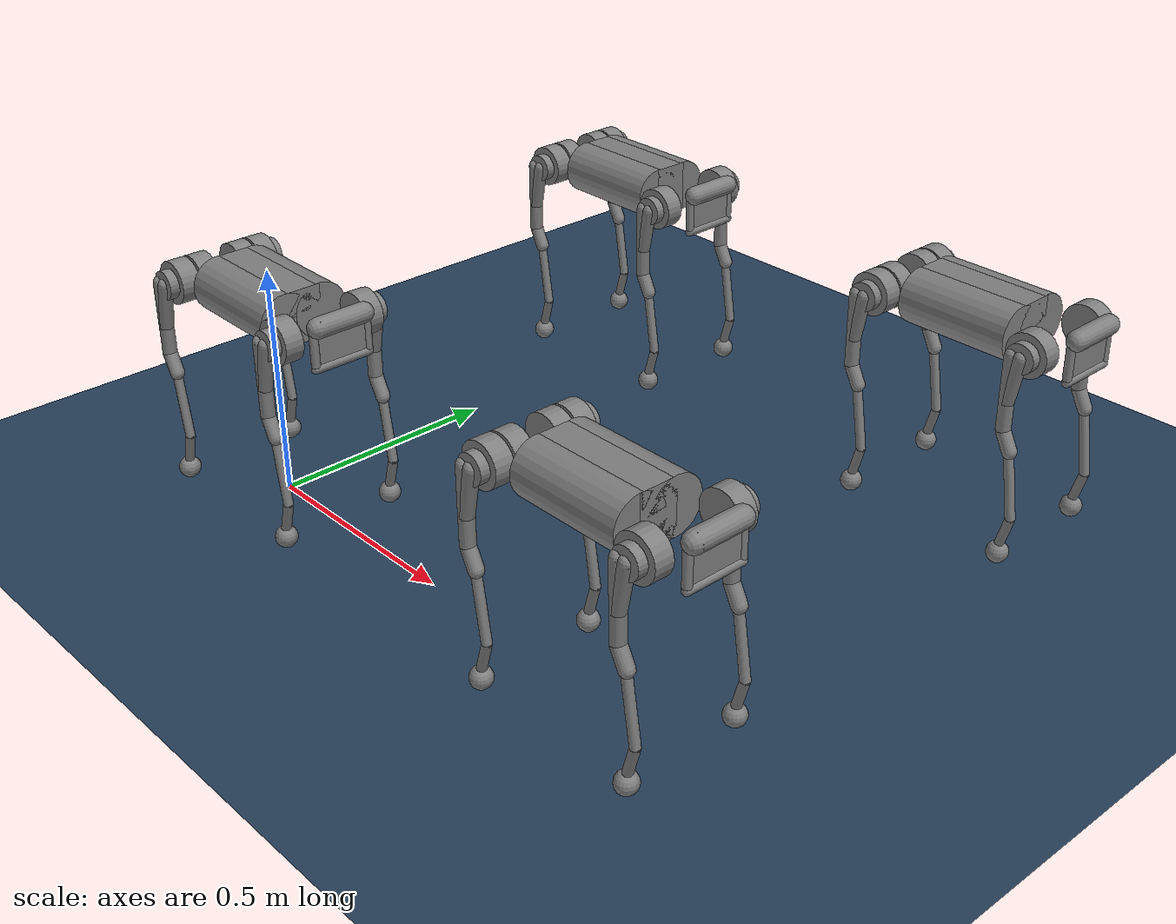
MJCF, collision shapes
<!--
  多机狗同场景 MJCF 文件
  包含 4 只 Go1，各自独立控制，共享同一地面

  每只狗的关节/执行器名称加了前缀（go0_, go1_, go2_, go3_）
  避免命名冲突
-->
<mujoco model="multi_go1 scene">
  <compiler angle="radian" meshdir="mujoco_menagerie/unitree_go1/assets" autolimits="true"/>
  <option cone="elliptic" impratio="100"/>

  <default>
    <default class="go1">
      <geom friction="0.6" margin="0.001" condim="1"/>
      <joint axis="0 1 0" damping="2" armature="0.01" frictionloss="0.2"/>
      <position kp="100" forcerange="-23.7 23.7"/>
      <default class="abduction">
        <joint axis="1 0 0" damping="1" range="-0.863 0.863"/>
        <position ctrlrange="-0.863 0.863"/>
      </default>
      <default class="hip">
        <joint range="-0.686 4.501"/>
        <position ctrlrange="-0.686 4.501"/>
      </default>
      <default class="knee">
        <joint range="-2.818 -0.888"/>
        <position forcerange="-35.55 35.55" ctrlrange="-2.818 -0.888"/>
      </default>
      <default class="visual">
        <geom type="mesh" contype="0" conaffinity="0" group="2" material="dark"/>
      </default>
      <default class="collision">
        <geom group="3" type="capsule"/>
        <default class="hip_left1">
          <geom size="0.046 0.02" pos="0 0.045 0" quat="1 1 0 0" type="cylinder"/>
        </default>
        <default class="hip_left2">
          <geom size="0.031 0.02" pos="0 0.065 0" quat="1 1 0 0" type="cylinder"/>
        </default>
        <default class="hip_left3">
          <geom size="0.046 0.02" quat="1 1 0 0" type="cylinder"/>
        </default>
        <default class="hip_right1">
          <geom size="0.046 0.02" pos="0 -0.045 0" quat="1 1 0 0" type="cylinder"/>
        </default>
        <default class="hip_right2">
          <geom size="0.031 0.02" pos="0 -0.065 0" quat="1 1 0 0" type="cylinder"/>
        </default>
        <default class="hip_right3">
          <geom size="0.046 0.02" quat="1 1 0 0" type="cylinder"/>
        </default>
        <default class="thigh1">
          <geom size="0.015" fromto="-0.02 0 0 -0.02 0 -0.16"/>
        </default>
        <default class="thigh2">
          <geom size="0.015" fromto="0 0 0 -0.02 0 -0.1"/>
        </default>
        <default class="thigh3">
          <geom size="0.015" fromto="-0.02 0 -0.16 0 0 -0.2"/>
        </default>
        <default class="calf1">
          <geom size="0.01" fromto="0 0 0 0.02 0 -0.13"/>
        </default>
        <default class="calf2">
          <geom size="0.01" fromto="0.02 0 -0.13 0 0 -0.2"/>
        </default>
        <default class="foot">
          <geom type="sphere" size="0.023" pos="0 0 -0.213" priority="1" solimp="0.015 1 0.023" condim="6"
            friction="0.8 0.02 0.01"/>
        </default>
      </default>
    </default>
  </default>

  <asset>
    <material name="dark" rgba="0.2 0.2 0.2 1"/>
    <material name="red" rgba="0.8 0.2 0.2 1"/>
    <material name="blue" rgba="0.2 0.2 0.8 1"/>
    <material name="green" rgba="0.2 0.8 0.2 1"/>
    <mesh class="go1" file="trunk.stl"/>
    <mesh class="go1" file="hip.stl"/>
    <mesh class="go1" file="thigh_mirror.stl"/>
    <mesh class="go1" file="calf.stl"/>
    <mesh class="go1" file="thigh.stl"/>
    <texture type="skybox" builtin="gradient" rgb1="0.3 0.5 0.7" rgb2="0 0 0" width="512" height="3072"/>
    <texture type="2d" name="groundplane" builtin="checker" mark="edge" rgb1="0.2 0.3 0.4" rgb2="0.1 0.2 0.3"
      markrgb="0.8 0.8 0.8" width="300" height="300"/>
    <material name="groundplane" texture="groundplane" texuniform="true" texrepeat="5 5" reflectance="0.2"/>
  </asset>

  <worldbody>
    <light pos="0 0 1.5" dir="0 0 -1" directional="true"/>
    <geom name="floor" size="0 0 0.05" type="plane" material="groundplane"/>

    <!-- ====== 狗 0：原点，红色 ====== -->
    <body name="go0_trunk" pos="0 0 0.445" childclass="go1">
      <camera name="go0_tracking" mode="trackcom" pos="0 -1 0.8" xyaxes="1 0 0 0 1 1"/>
      <inertial pos="0.0223 0.002 -0.0005" quat="-0.00342088 0.705204 0.000106698 0.708996" mass="5.204"
        diaginertia="0.0716565 0.0630105 0.0168101"/>
      <freejoint name="go0_freejoint"/>
      <geom class="visual" mesh="trunk" material="red"/>
      <geom class="collision" size="0.125 0.04 0.057" type="box"/>
      <geom class="collision" quat="1 0 1 0" pos="0 -0.04 0" size="0.058 0.125" type="cylinder"/>
      <geom class="collision" quat="1 0 1 0" pos="0 +0.04 0" size="0.058 0.125" type="cylinder"/>
      <geom class="collision" pos="0.25 0 0" size="0.005 0.06 0.05" type="box"/>
      <geom class="collision" pos="0.25 0.06 -0.01" size="0.009 0.035"/>
      <geom class="collision" pos="0.25 -0.06 -0.01" size="0.009 0.035"/>
      <geom class="collision" pos="0.25 0 -0.05" size="0.01 0.06" quat="1 1 0 0"/>
      <geom class="collision" pos="0.255 0 0.0355" size="0.021 0.052" quat="1 1 0 0"/>
      <body name="go0_FR_hip" pos="0.1881 -0.04675 0">
        <joint class="abduction" name="go0_FR_hip_joint"/>
        <geom class="visual" mesh="hip" quat="1 0 0 0"/>
        <geom class="hip_right1"/>
        <geom class="hip_right2"/>
        <body name="go0_FR_thigh" pos="0 -0.08 0">
          <joint class="hip" name="go0_FR_thigh_joint"/>
          <geom class="visual" mesh="thigh_mirror"/>
          <geom class="thigh1"/>
          <geom class="thigh2"/>
          <geom class="thigh3"/>
          <body name="go0_FR_calf" pos="0 0 -0.213">
            <joint class="knee" name="go0_FR_calf_joint"/>
            <geom class="visual" mesh="calf"/>
            <geom class="calf1"/>
            <geom class="calf2"/>
            <geom name="go0_FR" class="foot"/>
          </body>
        </body>
      </body>
      <body name="go0_FL_hip" pos="0.1881 0.04675 0">
        <joint class="abduction" name="go0_FL_hip_joint"/>
        <geom class="visual" mesh="hip"/>
        <geom class="hip_left1"/>
        <geom class="hip_left2"/>
        <body name="go0_FL_thigh" pos="0 0.08 0">
          <joint class="hip" name="go0_FL_thigh_joint"/>
          <geom class="visual" mesh="thigh"/>
          <geom class="thigh1"/>
          <geom class="thigh2"/>
          <geom class="thigh3"/>
          <body name="go0_FL_calf" pos="0 0 -0.213">
            <joint class="knee" name="go0_FL_calf_joint"/>
            <geom class="visual" mesh="calf"/>
            <geom class="calf1"/>
            <geom class="calf2"/>
            <geom name="go0_FL" class="foot"/>
          </body>
        </body>
      </body>
      <body name="go0_RR_hip" pos="-0.1881 -0.04675 0">
        <joint class="abduction" name="go0_RR_hip_joint"/>
        <geom class="visual" quat="0 0 0 -1" mesh="hip"/>
        <geom class="hip_right1"/>
        <geom class="hip_right2"/>
        <geom class="hip_right3"/>
        <body name="go0_RR_thigh" pos="0 -0.08 0">
          <joint class="hip" name="go0_RR_thigh_joint"/>
          <geom class="visual" mesh="thigh_mirror"/>
          <geom class="thigh1"/>
          <geom class="thigh2"/>
          <geom class="thigh3"/>
          <body name="go0_RR_calf" pos="0 0 -0.213">
            <joint class="knee" name="go0_RR_calf_joint"/>
            <geom class="visual" mesh="calf"/>
            <geom class="calf1"/>
            <geom class="calf2"/>
            <geom name="go0_RR" class="foot"/>
          </body>
        </body>
      </body>
      <body name="go0_RL_hip" pos="-0.1881 0.04675 0">
        <joint class="abduction" name="go0_RL_hip_joint"/>
        <geom class="visual" quat="0 0 1 0" mesh="hip"/>
        <geom class="hip_left1"/>
        <geom class="hip_left2"/>
        <geom class="hip_left3"/>
        <body name="go0_RL_thigh" pos="0 0.08 0">
          <joint class="hip" name="go0_RL_thigh_joint"/>
          <geom class="visual" mesh="thigh"/>
          <geom class="thigh1"/>
          <geom class="thigh2"/>
          <geom class="thigh3"/>
          <body name="go0_RL_calf" pos="0 0 -0.213">
            <joint class="knee" name="go0_RL_calf_joint"/>
            <geom class="visual" mesh="calf"/>
            <geom class="calf1"/>
            <geom class="calf2"/>
            <geom name="go0_RL" class="foot"/>
          </body>
        </body>
      </body>
    </body>

    <!-- ====== 狗 1：右侧 1m，绿色 ====== -->
    <body name="go1_trunk" pos="0 1 0.445" childclass="go1">
      <inertial pos="0.0223 0.002 -0.0005" quat="-0.00342088 0.705204 0.000106698 0.708996" mass="5.204"
        diaginertia="0.0716565 0.0630105 0.0168101"/>
      <freejoint name="go1_freejoint"/>
      <geom class="visual" mesh="trunk" material="green"/>
      <geom class="collision" size="0.125 0.04 0.057" type="box"/>
      <geom class="collision" quat="1 0 1 0" pos="0 -0.04 0" size="0.058 0.125" type="cylinder"/>
      <geom class="collision" quat="1 0 1 0" pos="0 +0.04 0" size="0.058 0.125" type="cylinder"/>
      <geom class="collision" pos="0.25 0 0" size="0.005 0.06 0.05" type="box"/>
      <geom class="collision" pos="0.25 0.06 -0.01" size="0.009 0.035"/>
      <geom class="collision" pos="0.25 -0.06 -0.01" size="0.009 0.035"/>
      <geom class="collision" pos="0.25 0 -0.05" size="0.01 0.06" quat="1 1 0 0"/>
      <geom class="collision" pos="0.255 0 0.0355" size="0.021 0.052" quat="1 1 0 0"/>
      <body name="go1_FR_hip" pos="0.1881 -0.04675 0">
        <joint class="abduction" name="go1_FR_hip_joint"/>
        <geom class="visual" mesh="hip" quat="1 0 0 0"/>
        <geom class="hip_right1"/>
        <geom class="hip_right2"/>
        <body name="go1_FR_thigh" pos="0 -0.08 0">
          <joint class="hip" name="go1_FR_thigh_joint"/>
          <geom class="visual" mesh="thigh_mirror"/>
          <geom class="thigh1"/>
          <geom class="thigh2"/>
          <geom class="thigh3"/>
          <body name="go1_FR_calf" pos="0 0 -0.213">
            <joint class="knee" name="go1_FR_calf_joint"/>
            <geom class="visual" mesh="calf"/>
            <geom class="calf1"/>
            <geom class="calf2"/>
            <geom name="go1_FR" class="foot"/>
          </body>
        </body>
      </body>
      <body name="go1_FL_hip" pos="0.1881 0.04675 0">
        <joint class="abduction" name="go1_FL_hip_joint"/>
        <geom class="visual" mesh="hip"/>
        <geom class="hip_left1"/>
        <geom class="hip_left2"/>
        <body name="go1_FL_thigh" pos="0 0.08 0">
          <joint class="hip" name="go1_FL_thigh_joint"/>
          <geom class="visual" mesh="thigh"/>
          <geom class="thigh1"/>
          <geom class="thigh2"/>
          <geom class="thigh3"/>
          <body name="go1_FL_calf" pos="0 0 -0.213">
            <joint class="knee" name="go1_FL_calf_joint"/>
            <geom class="visual" mesh="calf"/>
            <geom class="calf1"/>
            <geom class="calf2"/>
            <geom name="go1_FL" class="foot"/>
          </body>
        </body>
      </body>
      <body name="go1_RR_hip" pos="-0.1881 -0.04675 0">
        <joint class="abduction" name="go1_RR_hip_joint"/>
        <geom class="visual" quat="0 0 0 -1" mesh="hip"/>
        <geom class="hip_right1"/>
        <geom class="hip_right2"/>
        <geom class="hip_right3"/>
        <body name="go1_RR_thigh" pos="0 -0.08 0">
          <joint class="hip" name="go1_RR_thigh_joint"/>
          <geom class="visual" mesh="thigh_mirror"/>
          <geom class="thigh1"/>
          <geom class="thigh2"/>
          <geom class="thigh3"/>
          <body name="go1_RR_calf" pos="0 0 -0.213">
            <joint class="knee" name="go1_RR_calf_joint"/>
            <geom class="visual" mesh="calf"/>
            <geom class="calf1"/>
            <geom class="calf2"/>
            <geom name="go1_RR" class="foot"/>
          </body>
        </body>
      </body>
      <body name="go1_RL_hip" pos="-0.1881 0.04675 0">
        <joint class="abduction" name="go1_RL_hip_joint"/>
        <geom class="visual" quat="0 0 1 0" mesh="hip"/>
        <geom class="hip_left1"/>
        <geom class="hip_left2"/>
        <geom class="hip_left3"/>
        <body name="go1_RL_thigh" pos="0 0.08 0">
          <joint class="hip" name="go1_RL_thigh_joint"/>
          <geom class="visual" mesh="thigh"/>
          <geom class="thigh1"/>
          <geom class="thigh2"/>
          <geom class="thigh3"/>
          <body name="go1_RL_calf" pos="0 0 -0.213">
            <joint class="knee" name="go1_RL_calf_joint"/>
            <geom class="visual" mesh="calf"/>
            <geom class="calf1"/>
            <geom class="calf2"/>
            <geom name="go1_RL" class="foot"/>
          </body>
        </body>
      </body>
    </body>

    <!-- ====== 狗 2：前方 1m，蓝色 ====== -->
    <body name="go2_trunk" pos="1 0 0.445" childclass="go1">
      <inertial pos="0.0223 0.002 -0.0005" quat="-0.00342088 0.705204 0.000106698 0.708996" mass="5.204"
        diaginertia="0.0716565 0.0630105 0.0168101"/>
      <freejoint name="go2_freejoint"/>
      <geom class="visual" mesh="trunk" material="blue"/>
      <geom class="collision" size="0.125 0.04 0.057" type="box"/>
      <geom class="collision" quat="1 0 1 0" pos="0 -0.04 0" size="0.058 0.125" type="cylinder"/>
      <geom class="collision" quat="1 0 1 0" pos="0 +0.04 0" size="0.058 0.125" type="cylinder"/>
      <geom class="collision" pos="0.25 0 0" size="0.005 0.06 0.05" type="box"/>
      <geom class="collision" pos="0.25 0.06 -0.01" size="0.009 0.035"/>
      <geom class="collision" pos="0.25 -0.06 -0.01" size="0.009 0.035"/>
      <geom class="collision" pos="0.25 0 -0.05" size="0.01 0.06" quat="1 1 0 0"/>
      <geom class="collision" pos="0.255 0 0.0355" size="0.021 0.052" quat="1 1 0 0"/>
      <body name="go2_FR_hip" pos="0.1881 -0.04675 0">
        <joint class="abduction" name="go2_FR_hip_joint"/>
        <geom class="visual" mesh="hip" quat="1 0 0 0"/>
        <geom class="hip_right1"/>
        <geom class="hip_right2"/>
        <body name="go2_FR_thigh" pos="0 -0.08 0">
          <joint class="hip" name="go2_FR_thigh_joint"/>
          <geom class="visual" mesh="thigh_mirror"/>
          <geom class="thigh1"/>
          <geom class="thigh2"/>
          <geom class="thigh3"/>
          <body name="go2_FR_calf" pos="0 0 -0.213">
            <joint class="knee" name="go2_FR_calf_joint"/>
            <geom class="visual" mesh="calf"/>
            <geom class="calf1"/>
            <geom class="calf2"/>
            <geom name="go2_FR" class="foot"/>
          </body>
        </body>
      </body>
      <body name="go2_FL_hip" pos="0.1881 0.04675 0">
        <joint class="abduction" name="go2_FL_hip_joint"/>
        <geom class="visual" mesh="hip"/>
        <geom class="hip_left1"/>
        <geom class="hip_left2"/>
        <body name="go2_FL_thigh" pos="0 0.08 0">
          <joint class="hip" name="go2_FL_thigh_joint"/>
          <geom class="visual" mesh="thigh"/>
          <geom class="thigh1"/>
          <geom class="thigh2"/>
          <geom class="thigh3"/>
          <body name="go2_FL_calf" pos="0 0 -0.213">
            <joint class="knee" name="go2_FL_calf_joint"/>
            <geom class="visual" mesh="calf"/>
            <geom class="calf1"/>
            <geom class="calf2"/>
            <geom name="go2_FL" class="foot"/>
          </body>
        </body>
      </body>
      <body name="go2_RR_hip" pos="-0.1881 -0.04675 0">
        <joint class="abduction" name="go2_RR_hip_joint"/>
        <geom class="visual" quat="0 0 0 -1" mesh="hip"/>
        <geom class="hip_right1"/>
        <geom class="hip_right2"/>
        <geom class="hip_right3"/>
        <body name="go2_RR_thigh" pos="0 -0.08 0">
          <joint class="hip" name="go2_RR_thigh_joint"/>
          <geom class="visual" mesh="thigh_mirror"/>
          <geom class="thigh1"/>
          <geom class="thigh2"/>
          <geom class="thigh3"/>
          <body name="go2_RR_calf" pos="0 0 -0.213">
            <joint class="knee" name="go2_RR_calf_joint"/>
            <geom class="visual" mesh="calf"/>
            <geom class="calf1"/>
            <geom class="calf2"/>
            <geom name="go2_RR" class="foot"/>
          </body>
        </body>
      </body>
      <body name="go2_RL_hip" pos="-0.1881 0.04675 0">
        <joint class="abduction" name="go2_RL_hip_joint"/>
        <geom class="visual" quat="0 0 1 0" mesh="hip"/>
        <geom class="hip_left1"/>
        <geom class="hip_left2"/>
        <geom class="hip_left3"/>
        <body name="go2_RL_thigh" pos="0 0.08 0">
          <joint class="hip" name="go2_RL_thigh_joint"/>
          <geom class="visual" mesh="thigh"/>
          <geom class="thigh1"/>
          <geom class="thigh2"/>
          <geom class="thigh3"/>
          <body name="go2_RL_calf" pos="0 0 -0.213">
            <joint class="knee" name="go2_RL_calf_joint"/>
            <geom class="visual" mesh="calf"/>
            <geom class="calf1"/>
            <geom class="calf2"/>
            <geom name="go2_RL" class="foot"/>
          </body>
        </body>
      </body>
    </body>

    <!-- ====== 狗 3：右前方 1m，白色 ====== -->
    <body name="go3_trunk" pos="1 1 0.445" childclass="go1">
      <inertial pos="0.0223 0.002 -0.0005" quat="-0.00342088 0.705204 0.000106698 0.708996" mass="5.204"
        diaginertia="0.0716565 0.0630105 0.0168101"/>
      <freejoint name="go3_freejoint"/>
      <geom class="visual" mesh="trunk"/>
      <geom class="collision" size="0.125 0.04 0.057" type="box"/>
      <geom class="collision" quat="1 0 1 0" pos="0 -0.04 0" size="0.058 0.125" type="cylinder"/>
      <geom class="collision" quat="1 0 1 0" pos="0 +0.04 0" size="0.058 0.125" type="cylinder"/>
      <geom class="collision" pos="0.25 0 0" size="0.005 0.06 0.05" type="box"/>
      <geom class="collision" pos="0.25 0.06 -0.01" size="0.009 0.035"/>
      <geom class="collision" pos="0.25 -0.06 -0.01" size="0.009 0.035"/>
      <geom class="collision" pos="0.25 0 -0.05" size="0.01 0.06" quat="1 1 0 0"/>
      <geom class="collision" pos="0.255 0 0.0355" size="0.021 0.052" quat="1 1 0 0"/>
      <body name="go3_FR_hip" pos="0.1881 -0.04675 0">
        <joint class="abduction" name="go3_FR_hip_joint"/>
        <geom class="visual" mesh="hip" quat="1 0 0 0"/>
        <geom class="hip_right1"/>
        <geom class="hip_right2"/>
        <body name="go3_FR_thigh" pos="0 -0.08 0">
          <joint class="hip" name="go3_FR_thigh_joint"/>
          <geom class="visual" mesh="thigh_mirror"/>
          <geom class="thigh1"/>
          <geom class="thigh2"/>
          <geom class="thigh3"/>
          <body name="go3_FR_calf" pos="0 0 -0.213">
            <joint class="knee" name="go3_FR_calf_joint"/>
            <geom class="visual" mesh="calf"/>
            <geom class="calf1"/>
            <geom class="calf2"/>
            <geom name="go3_FR" class="foot"/>
          </body>
        </body>
      </body>
      <body name="go3_FL_hip" pos="0.1881 0.04675 0">
        <joint class="abduction" name="go3_FL_hip_joint"/>
        <geom class="visual" mesh="hip"/>
        <geom class="hip_left1"/>
        <geom class="hip_left2"/>
        <body name="go3_FL_thigh" pos="0 0.08 0">
          <joint class="hip" name="go3_FL_thigh_joint"/>
          <geom class="visual" mesh="thigh"/>
          <geom class="thigh1"/>
          <geom class="thigh2"/>
          <geom class="thigh3"/>
          <body name="go3_FL_calf" pos="0 0 -0.213">
            <joint class="knee" name="go3_FL_calf_joint"/>
            <geom class="visual" mesh="calf"/>
            <geom class="calf1"/>
            <geom class="calf2"/>
            <geom name="go3_FL" class="foot"/>
          </body>
        </body>
      </body>
      <body name="go3_RR_hip" pos="-0.1881 -0.04675 0">
        <joint class="abduction" name="go3_RR_hip_joint"/>
        <geom class="visual" quat="0 0 0 -1" mesh="hip"/>
        <geom class="hip_right1"/>
        <geom class="hip_right2"/>
        <geom class="hip_right3"/>
        <body name="go3_RR_thigh" pos="0 -0.08 0">
          <joint class="hip" name="go3_RR_thigh_joint"/>
          <geom class="visual" mesh="thigh_mirror"/>
          <geom class="thigh1"/>
          <geom class="thigh2"/>
          <geom class="thigh3"/>
          <body name="go3_RR_calf" pos="0 0 -0.213">
            <joint class="knee" name="go3_RR_calf_joint"/>
            <geom class="visual" mesh="calf"/>
            <geom class="calf1"/>
            <geom class="calf2"/>
            <geom name="go3_RR" class="foot"/>
          </body>
        </body>
      </body>
      <body name="go3_RL_hip" pos="-0.1881 0.04675 0">
        <joint class="abduction" name="go3_RL_hip_joint"/>
        <geom class="visual" quat="0 0 1 0" mesh="hip"/>
        <geom class="hip_left1"/>
        <geom class="hip_left2"/>
        <geom class="hip_left3"/>
        <body name="go3_RL_thigh" pos="0 0.08 0">
          <joint class="hip" name="go3_RL_thigh_joint"/>
          <geom class="visual" mesh="thigh"/>
          <geom class="thigh1"/>
          <geom class="thigh2"/>
          <geom class="thigh3"/>
          <body name="go3_RL_calf" pos="0 0 -0.213">
            <joint class="knee" name="go3_RL_calf_joint"/>
            <geom class="visual" mesh="calf"/>
            <geom class="calf1"/>
            <geom class="calf2"/>
            <geom name="go3_RL" class="foot"/>
          </body>
        </body>
      </body>
    </body>
  </worldbody>

  <!-- 4 只狗 × 12 个关节 = 48 个执行器 -->
  <actuator>
    <position class="abduction" name="go0_FR_hip" joint="go0_FR_hip_joint"/>
    <position class="hip" name="go0_FR_thigh" joint="go0_FR_thigh_joint"/>
    <position class="knee" name="go0_FR_calf" joint="go0_FR_calf_joint"/>
    <position class="abduction" name="go0_FL_hip" joint="go0_FL_hip_joint"/>
    <position class="hip" name="go0_FL_thigh" joint="go0_FL_thigh_joint"/>
    <position class="knee" name="go0_FL_calf" joint="go0_FL_calf_joint"/>
    <position class="abduction" name="go0_RR_hip" joint="go0_RR_hip_joint"/>
    <position class="hip" name="go0_RR_thigh" joint="go0_RR_thigh_joint"/>
    <position class="knee" name="go0_RR_calf" joint="go0_RR_calf_joint"/>
    <position class="abduction" name="go0_RL_hip" joint="go0_RL_hip_joint"/>
    <position class="hip" name="go0_RL_thigh" joint="go0_RL_thigh_joint"/>
    <position class="knee" name="go0_RL_calf" joint="go0_RL_calf_joint"/>
    <position class="abduction" name="go1_FR_hip" joint="go1_FR_hip_joint"/>
    <position class="hip" name="go1_FR_thigh" joint="go1_FR_thigh_joint"/>
    <position class="knee" name="go1_FR_calf" joint="go1_FR_calf_joint"/>
    <position class="abduction" name="go1_FL_hip" joint="go1_FL_hip_joint"/>
    <position class="hip" name="go1_FL_thigh" joint="go1_FL_thigh_joint"/>
    <position class="knee" name="go1_FL_calf" joint="go1_FL_calf_joint"/>
    <position class="abduction" name="go1_RR_hip" joint="go1_RR_hip_joint"/>
    <position class="hip" name="go1_RR_thigh" joint="go1_RR_thigh_joint"/>
    <position class="knee" name="go1_RR_calf" joint="go1_RR_calf_joint"/>
    <position class="abduction" name="go1_RL_hip" joint="go1_RL_hip_joint"/>
    <position class="hip" name="go1_RL_thigh" joint="go1_RL_thigh_joint"/>
    <position class="knee" name="go1_RL_calf" joint="go1_RL_calf_joint"/>
    <position class="abduction" name="go2_FR_hip" joint="go2_FR_hip_joint"/>
    <position class="hip" name="go2_FR_thigh" joint="go2_FR_thigh_joint"/>
    <position class="knee" name="go2_FR_calf" joint="go2_FR_calf_joint"/>
    <position class="abduction" name="go2_FL_hip" joint="go2_FL_hip_joint"/>
    <position class="hip" name="go2_FL_thigh" joint="go2_FL_thigh_joint"/>
    <position class="knee" name="go2_FL_calf" joint="go2_FL_calf_joint"/>
    <position class="abduction" name="go2_RR_hip" joint="go2_RR_hip_joint"/>
    <position class="hip" name="go2_RR_thigh" joint="go2_RR_thigh_joint"/>
    <position class="knee" name="go2_RR_calf" joint="go2_RR_calf_joint"/>
    <position class="abduction" name="go2_RL_hip" joint="go2_RL_hip_joint"/>
    <position class="hip" name="go2_RL_thigh" joint="go2_RL_thigh_joint"/>
    <position class="knee" name="go2_RL_calf" joint="go2_RL_calf_joint"/>
    <position class="abduction" name="go3_FR_hip" joint="go3_FR_hip_joint"/>
    <position class="hip" name="go3_FR_thigh" joint="go3_FR_thigh_joint"/>
    <position class="knee" name="go3_FR_calf" joint="go3_FR_calf_joint"/>
    <position class="abduction" name="go3_FL_hip" joint="go3_FL_hip_joint"/>
    <position class="hip" name="go3_FL_thigh" joint="go3_FL_thigh_joint"/>
    <position class="knee" name="go3_FL_calf" joint="go3_FL_calf_joint"/>
    <position class="abduction" name="go3_RR_hip" joint="go3_RR_hip_joint"/>
    <position class="hip" name="go3_RR_thigh" joint="go3_RR_thigh_joint"/>
    <position class="knee" name="go3_RR_calf" joint="go3_RR_calf_joint"/>
    <position class="abduction" name="go3_RL_hip" joint="go3_RL_hip_joint"/>
    <position class="hip" name="go3_RL_thigh" joint="go3_RL_thigh_joint"/>
    <position class="knee" name="go3_RL_calf" joint="go3_RL_calf_joint"/>
  </actuator>

  <keyframe>
    <key name="home"
      qpos="0 0 0.27 1 0 0 0  0 0.9 -1.8 0 0.9 -1.8 0 0.9 -1.8 0 0.9 -1.8
            0 1 0.27 1 0 0 0  0 0.9 -1.8 0 0.9 -1.8 0 0.9 -1.8 0 0.9 -1.8
            1 0 0.27 1 0 0 0  0 0.9 -1.8 0 0.9 -1.8 0 0.9 -1.8 0 0.9 -1.8
            1 1 0.27 1 0 0 0  0 0.9 -1.8 0 0.9 -1.8 0 0.9 -1.8 0 0.9 -1.8"
      ctrl="0 0.9 -1.8 0 0.9 -1.8 0 0.9 -1.8 0 0.9 -1.8
            0 0.9 -1.8 0 0.9 -1.8 0 0.9 -1.8 0 0.9 -1.8
            0 0.9 -1.8 0 0.9 -1.8 0 0.9 -1.8 0 0.9 -1.8
            0 0.9 -1.8 0 0.9 -1.8 0 0.9 -1.8 0 0.9 -1.8"/>
  </keyframe>
</mujoco>
